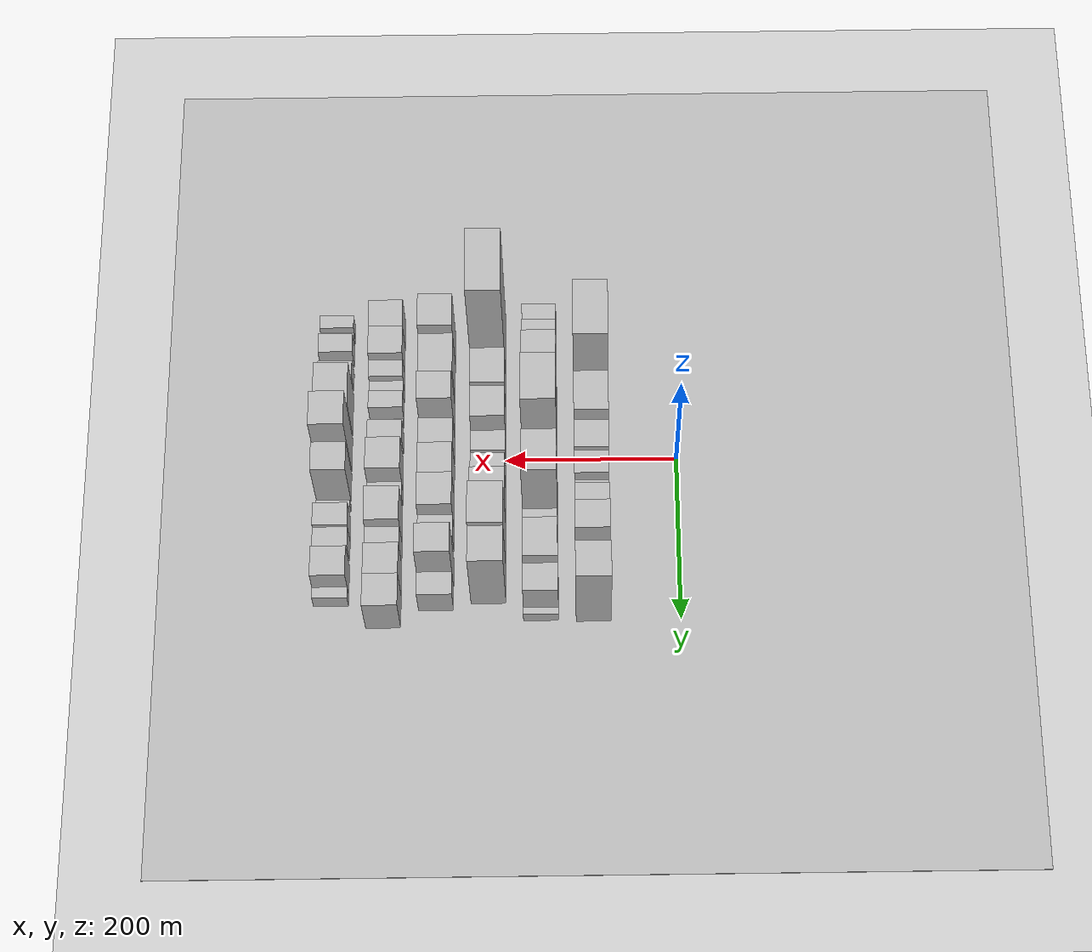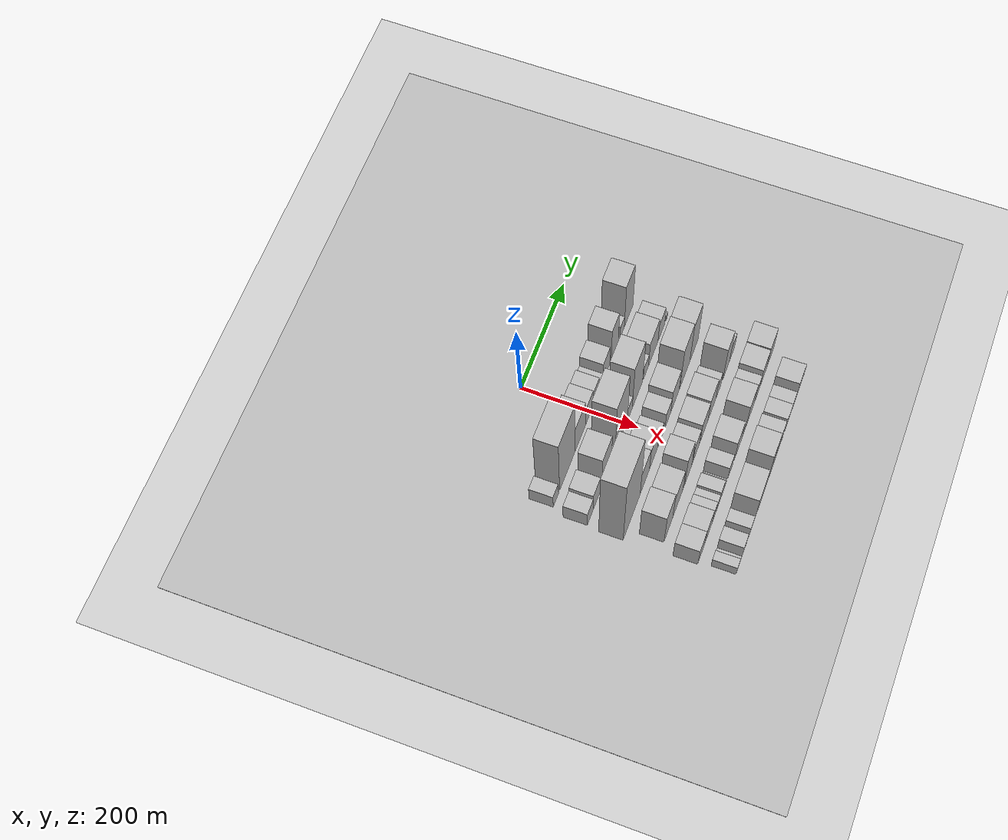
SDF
<sdf version="1.6">
 <world name="default">
  <include><name>ground_plane_1</name><uri>model://HANNAS_ground_plane</uri></include>
  <include>
   <name>ground_plane_2</name>
   <uri>model://HANNAS_ground_plane</uri>
   <pose>100 0 0  0 0 0</pose>
  </include>
  <model name="building_22">
   <static>1</static>
   <pose>100.0000 -160.2569 0 0.000000 0.000000 0.000000</pose>
   <link name="link">
    <pose>0 0 21.00 0 0 0</pose>
    <collision name="collision"><geometry><box><size>40.0000 23.4650 42.0000</size></box></geometry></collision>
    <visual name="visual">
     <cast_shadows>0</cast_shadows>
     <geometry><box><size>40.0000 23.4650 42.0000</size></box></geometry>
     <material>
      <script>
       <uri>model://HANNAS_wall/materials/scripts</uri>
       <uri>model://HANNAS_wall/materials/textures</uri>
       <name>vrc/HANNAS_wall</name>
      </script>
     </material>
    </visual>
   </link>
  </model>
  <model name="building_23">
   <static>1</static>
   <pose>100.0000 -108.8378 0 0.000000 0.000000 0.000000</pose>
   <link name="link">
    <pose>0 0 90.00 0 0 0</pose>
    <collision name="collision"><geometry><box><size>40.0000 69.3731 180.0000</size></box></geometry></collision>
    <visual name="visual">
     <cast_shadows>0</cast_shadows>
     <geometry><box><size>40.0000 69.3731 180.0000</size></box></geometry>
     <material>
      <script>
       <uri>model://HANNAS_wall/materials/scripts</uri>
       <uri>model://HANNAS_wall/materials/textures</uri>
       <name>vrc/HANNAS_wall</name>
      </script>
     </material>
    </visual>
   </link>
  </model>
  <model name="building_24">
   <static>1</static>
   <pose>100.0000 -49.2360 0 0.000000 0.000000 0.000000</pose>
   <link name="link">
    <pose>0 0 43.50 0 0 0</pose>
    <collision name="collision"><geometry><box><size>40.0000 49.8305 87.0000</size></box></geometry></collision>
    <visual name="visual">
     <cast_shadows>0</cast_shadows>
     <geometry><box><size>40.0000 49.8305 87.0000</size></box></geometry>
     <material>
      <script>
       <uri>model://HANNAS_wall/materials/scripts</uri>
       <uri>model://HANNAS_wall/materials/textures</uri>
       <name>vrc/HANNAS_wall</name>
      </script>
     </material>
    </visual>
   </link>
  </model>
  <model name="building_25">
   <static>1</static>
   <pose>100.0000 -7.0572 0 0.000000 0.000000 0.000000</pose>
   <link name="link">
    <pose>0 0 30.00 0 0 0</pose>
    <collision name="collision"><geometry><box><size>40.0000 34.5271 60.0000</size></box></geometry></collision>
    <visual name="visual">
     <cast_shadows>0</cast_shadows>
     <geometry><box><size>40.0000 34.5271 60.0000</size></box></geometry>
     <material>
      <script>
       <uri>model://HANNAS_wall/materials/scripts</uri>
       <uri>model://HANNAS_wall/materials/textures</uri>
       <name>vrc/HANNAS_wall</name>
      </script>
     </material>
    </visual>
   </link>
  </model>
  <model name="building_26">
   <static>1</static>
   <pose>100.0000 24.4348 0 0.000000 0.000000 0.000000</pose>
   <link name="link">
    <pose>0 0 25.50 0 0 0</pose>
    <collision name="collision"><geometry><box><size>40.0000 28.4571 51.0000</size></box></geometry></collision>
    <visual name="visual">
     <cast_shadows>0</cast_shadows>
     <geometry><box><size>40.0000 28.4571 51.0000</size></box></geometry>
     <material>
      <script>
       <uri>model://HANNAS_wall/materials/scripts</uri>
       <uri>model://HANNAS_wall/materials/textures</uri>
       <name>vrc/HANNAS_wall</name>
      </script>
     </material>
    </visual>
   </link>
  </model>
  <model name="building_27">
   <static>1</static>
   <pose>100.0000 47.5312 0 0.000000 0.000000 0.000000</pose>
   <link name="link">
    <pose>0 0 15.00 0 0 0</pose>
    <collision name="collision"><geometry><box><size>40.0000 17.7357 30.0000</size></box></geometry></collision>
    <visual name="visual">
     <cast_shadows>0</cast_shadows>
     <geometry><box><size>40.0000 17.7357 30.0000</size></box></geometry>
     <material>
      <script>
       <uri>model://HANNAS_wall/materials/scripts</uri>
       <uri>model://HANNAS_wall/materials/textures</uri>
       <name>vrc/HANNAS_wall</name>
      </script>
     </material>
    </visual>
   </link>
  </model>
  <model name="building_28">
   <static>1</static>
   <pose>100.0000 72.5629 0 0.000000 0.000000 0.000000</pose>
   <link name="link">
    <pose>0 0 31.50 0 0 0</pose>
    <collision name="collision"><geometry><box><size>40.0000 32.3277 63.0000</size></box></geometry></collision>
    <visual name="visual">
     <cast_shadows>0</cast_shadows>
     <geometry><box><size>40.0000 32.3277 63.0000</size></box></geometry>
     <material>
      <script>
       <uri>model://HANNAS_wall/materials/scripts</uri>
       <uri>model://HANNAS_wall/materials/textures</uri>
       <name>vrc/HANNAS_wall</name>
      </script>
     </material>
    </visual>
   </link>
  </model>
  <model name="building_29">
   <static>1</static>
   <pose>100.0000 112.8015 0 0.000000 0.000000 0.000000</pose>
   <link name="link">
    <pose>0 0 52.50 0 0 0</pose>
    <collision name="collision"><geometry><box><size>40.0000 34.1494 105.0000</size></box></geometry></collision>
    <visual name="visual">
     <cast_shadows>0</cast_shadows>
     <geometry><box><size>40.0000 34.1494 105.0000</size></box></geometry>
     <material>
      <script>
       <uri>model://HANNAS_wall/materials/scripts</uri>
       <uri>model://HANNAS_wall/materials/textures</uri>
       <name>vrc/HANNAS_wall</name>
      </script>
     </material>
    </visual>
   </link>
  </model>
  <model name="building_30">
   <static>1</static>
   <pose>100.0000 149.2179 0 0.000000 0.000000 0.000000</pose>
   <link name="link">
    <pose>0 0 19.50 0 0 0</pose>
    <collision name="collision"><geometry><box><size>40.0000 20.6833 39.0000</size></box></geometry></collision>
    <visual name="visual">
     <cast_shadows>0</cast_shadows>
     <geometry><box><size>40.0000 20.6833 39.0000</size></box></geometry>
     <material>
      <script>
       <uri>model://HANNAS_wall/materials/scripts</uri>
       <uri>model://HANNAS_wall/materials/textures</uri>
       <name>vrc/HANNAS_wall</name>
      </script>
     </material>
    </visual>
   </link>
  </model>
  <model name="building_31">
   <static>1</static>
   <pose>100.0000 180.7832 0 0.000000 0.000000 0.000000</pose>
   <link name="link">
    <pose>0 0 69.00 0 0 0</pose>
    <collision name="collision"><geometry><box><size>40.0000 42.4473 138.0000</size></box></geometry></collision>
    <visual name="visual">
     <cast_shadows>0</cast_shadows>
     <geometry><box><size>40.0000 42.4473 138.0000</size></box></geometry>
     <material>
      <script>
       <uri>model://HANNAS_wall/materials/scripts</uri>
       <uri>model://HANNAS_wall/materials/textures</uri>
       <name>vrc/HANNAS_wall</name>
      </script>
     </material>
    </visual>
   </link>
  </model>
  <model name="building_79">
   <static>1</static>
   <pose>160.0000 -168.6205 0 0.000000 0.000000 0.000000</pose>
   <link name="link">
    <pose>0 0 24.00 0 0 0</pose>
    <collision name="collision"><geometry><box><size>40.0000 26.7682 48.0000</size></box></geometry></collision>
    <visual name="visual">
     <cast_shadows>0</cast_shadows>
     <geometry><box><size>40.0000 26.7682 48.0000</size></box></geometry>
     <material>
      <script>
       <uri>model://HANNAS_wall/materials/scripts</uri>
       <uri>model://HANNAS_wall/materials/textures</uri>
       <name>vrc/HANNAS_wall</name>
      </script>
     </material>
    </visual>
   </link>
  </model>
  <model name="building_80">
   <static>1</static>
   <pose>160.0000 -138.8640 0 0.000000 0.000000 0.000000</pose>
   <link name="link">
    <pose>0 0 30.00 0 0 0</pose>
    <collision name="collision"><geometry><box><size>40.0000 32.7448 60.0000</size></box></geometry></collision>
    <visual name="visual">
     <cast_shadows>0</cast_shadows>
     <geometry><box><size>40.0000 32.7448 60.0000</size></box></geometry>
     <material>
      <script>
       <uri>model://HANNAS_wall/materials/scripts</uri>
       <uri>model://HANNAS_wall/materials/textures</uri>
       <name>vrc/HANNAS_wall</name>
      </script>
     </material>
    </visual>
   </link>
  </model>
  <model name="building_81">
   <static>1</static>
   <pose>160.0000 -93.9280 0 0.000000 0.000000 0.000000</pose>
   <link name="link">
    <pose>0 0 55.50 0 0 0</pose>
    <collision name="collision"><geometry><box><size>40.0000 43.1273 111.0000</size></box></geometry></collision>
    <visual name="visual">
     <cast_shadows>0</cast_shadows>
     <geometry><box><size>40.0000 43.1273 111.0000</size></box></geometry>
     <material>
      <script>
       <uri>model://HANNAS_wall/materials/scripts</uri>
       <uri>model://HANNAS_wall/materials/textures</uri>
       <name>vrc/HANNAS_wall</name>
      </script>
     </material>
    </visual>
   </link>
  </model>
  <model name="building_82">
   <static>1</static>
   <pose>160.0000 -60.4800 0 0.000000 0.000000 0.000000</pose>
   <link name="link">
    <pose>0 0 13.50 0 0 0</pose>
    <collision name="collision"><geometry><box><size>40.0000 11.7686 27.0000</size></box></geometry></collision>
    <visual name="visual">
     <cast_shadows>0</cast_shadows>
     <geometry><box><size>40.0000 11.7686 27.0000</size></box></geometry>
     <material>
      <script>
       <uri>model://HANNAS_wall/materials/scripts</uri>
       <uri>model://HANNAS_wall/materials/textures</uri>
       <name>vrc/HANNAS_wall</name>
      </script>
     </material>
    </visual>
   </link>
  </model>
  <model name="building_83">
   <static>1</static>
   <pose>160.0000 -25.7675 0 0.000000 0.000000 0.000000</pose>
   <link name="link">
    <pose>0 0 87.00 0 0 0</pose>
    <collision name="collision"><geometry><box><size>40.0000 57.6565 174.0000</size></box></geometry></collision>
    <visual name="visual">
     <cast_shadows>0</cast_shadows>
     <geometry><box><size>40.0000 57.6565 174.0000</size></box></geometry>
     <material>
      <script>
       <uri>model://HANNAS_wall/materials/scripts</uri>
       <uri>model://HANNAS_wall/materials/textures</uri>
       <name>vrc/HANNAS_wall</name>
      </script>
     </material>
    </visual>
   </link>
  </model>
  <model name="building_84">
   <static>1</static>
   <pose>160.0000 15.1243 0 0.000000 0.000000 0.000000</pose>
   <link name="link">
    <pose>0 0 24.00 0 0 0</pose>
    <collision name="collision"><geometry><box><size>40.0000 24.1272 48.0000</size></box></geometry></collision>
    <visual name="visual">
     <cast_shadows>0</cast_shadows>
     <geometry><box><size>40.0000 24.1272 48.0000</size></box></geometry>
     <material>
      <script>
       <uri>model://HANNAS_wall/materials/scripts</uri>
       <uri>model://HANNAS_wall/materials/textures</uri>
       <name>vrc/HANNAS_wall</name>
      </script>
     </material>
    </visual>
   </link>
  </model>
  <model name="building_85">
   <static>1</static>
   <pose>160.0000 52.2467 0 0.000000 0.000000 0.000000</pose>
   <link name="link">
    <pose>0 0 73.50 0 0 0</pose>
    <collision name="collision"><geometry><box><size>40.0000 50.1175 147.0000</size></box></geometry></collision>
    <visual name="visual">
     <cast_shadows>0</cast_shadows>
     <geometry><box><size>40.0000 50.1175 147.0000</size></box></geometry>
     <material>
      <script>
       <uri>model://HANNAS_wall/materials/scripts</uri>
       <uri>model://HANNAS_wall/materials/textures</uri>
       <name>vrc/HANNAS_wall</name>
      </script>
     </material>
    </visual>
   </link>
  </model>
  <model name="building_86">
   <static>1</static>
   <pose>160.0000 93.2717 0 0.000000 0.000000 0.000000</pose>
   <link name="link">
    <pose>0 0 22.50 0 0 0</pose>
    <collision name="collision"><geometry><box><size>40.0000 25.9326 45.0000</size></box></geometry></collision>
    <visual name="visual">
     <cast_shadows>0</cast_shadows>
     <geometry><box><size>40.0000 25.9326 45.0000</size></box></geometry>
     <material>
      <script>
       <uri>model://HANNAS_wall/materials/scripts</uri>
       <uri>model://HANNAS_wall/materials/textures</uri>
       <name>vrc/HANNAS_wall</name>
      </script>
     </material>
    </visual>
   </link>
  </model>
  <model name="building_87">
   <static>1</static>
   <pose>160.0000 129.9010 0 0.000000 0.000000 0.000000</pose>
   <link name="link">
    <pose>0 0 40.50 0 0 0</pose>
    <collision name="collision"><geometry><box><size>40.0000 47.3261 81.0000</size></box></geometry></collision>
    <visual name="visual">
     <cast_shadows>0</cast_shadows>
     <geometry><box><size>40.0000 47.3261 81.0000</size></box></geometry>
     <material>
      <script>
       <uri>model://HANNAS_wall/materials/scripts</uri>
       <uri>model://HANNAS_wall/materials/textures</uri>
       <name>vrc/HANNAS_wall</name>
      </script>
     </material>
    </visual>
   </link>
  </model>
  <model name="building_88">
   <static>1</static>
   <pose>160.0000 170.2879 0 0.000000 0.000000 0.000000</pose>
   <link name="link">
    <pose>0 0 30.00 0 0 0</pose>
    <collision name="collision"><geometry><box><size>40.0000 33.4475 60.0000</size></box></geometry></collision>
    <visual name="visual">
     <cast_shadows>0</cast_shadows>
     <geometry><box><size>40.0000 33.4475 60.0000</size></box></geometry>
     <material>
      <script>
       <uri>model://HANNAS_wall/materials/scripts</uri>
       <uri>model://HANNAS_wall/materials/textures</uri>
       <name>vrc/HANNAS_wall</name>
      </script>
     </material>
    </visual>
   </link>
  </model>
  <model name="building_89">
   <static>1</static>
   <pose>160.0000 196.2375 0 0.000000 0.000000 0.000000</pose>
   <link name="link">
    <pose>0 0 10.50 0 0 0</pose>
    <collision name="collision"><geometry><box><size>40.0000 8.4518 21.0000</size></box></geometry></collision>
    <visual name="visual">
     <cast_shadows>0</cast_shadows>
     <geometry><box><size>40.0000 8.4518 21.0000</size></box></geometry>
     <material>
      <script>
       <uri>model://HANNAS_wall/materials/scripts</uri>
       <uri>model://HANNAS_wall/materials/textures</uri>
       <name>vrc/HANNAS_wall</name>
      </script>
     </material>
    </visual>
   </link>
  </model>
  <model name="building_131">
   <static>1</static>
   <pose>220.0000 -146.2867 0 0.000000 0.000000 0.000000</pose>
   <link name="link">
    <pose>0 0 112.50 0 0 0</pose>
    <collision name="collision"><geometry><box><size>40.0000 79.0417 225.0000</size></box></geometry></collision>
    <visual name="visual">
     <cast_shadows>0</cast_shadows>
     <geometry><box><size>40.0000 79.0417 225.0000</size></box></geometry>
     <material>
      <script>
       <uri>model://HANNAS_wall/materials/scripts</uri>
       <uri>model://HANNAS_wall/materials/textures</uri>
       <name>vrc/HANNAS_wall</name>
      </script>
     </material>
    </visual>
   </link>
  </model>
  <model name="building_132">
   <static>1</static>
   <pose>220.0000 -84.6264 0 0.000000 0.000000 0.000000</pose>
   <link name="link">
    <pose>0 0 42.00 0 0 0</pose>
    <collision name="collision"><geometry><box><size>40.0000 44.2787 84.0000</size></box></geometry></collision>
    <visual name="visual">
     <cast_shadows>0</cast_shadows>
     <geometry><box><size>40.0000 44.2787 84.0000</size></box></geometry>
     <material>
      <script>
       <uri>model://HANNAS_wall/materials/scripts</uri>
       <uri>model://HANNAS_wall/materials/textures</uri>
       <name>vrc/HANNAS_wall</name>
      </script>
     </material>
    </visual>
   </link>
  </model>
  <model name="building_133">
   <static>1</static>
   <pose>220.0000 -43.1276 0 0.000000 0.000000 0.000000</pose>
   <link name="link">
    <pose>0 0 37.50 0 0 0</pose>
    <collision name="collision"><geometry><box><size>40.0000 38.7190 75.0000</size></box></geometry></collision>
    <visual name="visual">
     <cast_shadows>0</cast_shadows>
     <geometry><box><size>40.0000 38.7190 75.0000</size></box></geometry>
     <material>
      <script>
       <uri>model://HANNAS_wall/materials/scripts</uri>
       <uri>model://HANNAS_wall/materials/textures</uri>
       <name>vrc/HANNAS_wall</name>
      </script>
     </material>
    </visual>
   </link>
  </model>
  <model name="building_134">
   <static>1</static>
   <pose>220.0000 -8.1931 0 0.000000 0.000000 0.000000</pose>
   <link name="link">
    <pose>0 0 21.00 0 0 0</pose>
    <collision name="collision"><geometry><box><size>40.0000 25.1499 42.0000</size></box></geometry></collision>
    <visual name="visual">
     <cast_shadows>0</cast_shadows>
     <geometry><box><size>40.0000 25.1499 42.0000</size></box></geometry>
     <material>
      <script>
       <uri>model://HANNAS_wall/materials/scripts</uri>
       <uri>model://HANNAS_wall/materials/textures</uri>
       <name>vrc/HANNAS_wall</name>
      </script>
     </material>
    </visual>
   </link>
  </model>
  <model name="building_135">
   <static>1</static>
   <pose>220.0000 27.5547 0 0.000000 0.000000 0.000000</pose>
   <link name="link">
    <pose>0 0 27.00 0 0 0</pose>
    <collision name="collision"><geometry><box><size>40.0000 28.3457 54.0000</size></box></geometry></collision>
    <visual name="visual">
     <cast_shadows>0</cast_shadows>
     <geometry><box><size>40.0000 28.3457 54.0000</size></box></geometry>
     <material>
      <script>
       <uri>model://HANNAS_wall/materials/scripts</uri>
       <uri>model://HANNAS_wall/materials/textures</uri>
       <name>vrc/HANNAS_wall</name>
      </script>
     </material>
    </visual>
   </link>
  </model>
  <model name="building_136">
   <static>1</static>
   <pose>220.0000 62.4410 0 0.000000 0.000000 0.000000</pose>
   <link name="link">
    <pose>0 0 39.00 0 0 0</pose>
    <collision name="collision"><geometry><box><size>40.0000 41.4268 78.0000</size></box></geometry></collision>
    <visual name="visual">
     <cast_shadows>0</cast_shadows>
     <geometry><box><size>40.0000 41.4268 78.0000</size></box></geometry>
     <material>
      <script>
       <uri>model://HANNAS_wall/materials/scripts</uri>
       <uri>model://HANNAS_wall/materials/textures</uri>
       <name>vrc/HANNAS_wall</name>
      </script>
     </material>
    </visual>
   </link>
  </model>
  <model name="building_137">
   <static>1</static>
   <pose>220.0000 111.3456 0 0.000000 0.000000 0.000000</pose>
   <link name="link">
    <pose>0 0 69.00 0 0 0</pose>
    <collision name="collision"><geometry><box><size>40.0000 50.3825 138.0000</size></box></geometry></collision>
    <visual name="visual">
     <cast_shadows>0</cast_shadows>
     <geometry><box><size>40.0000 50.3825 138.0000</size></box></geometry>
     <material>
      <script>
       <uri>model://HANNAS_wall/materials/scripts</uri>
       <uri>model://HANNAS_wall/materials/textures</uri>
       <name>vrc/HANNAS_wall</name>
      </script>
     </material>
    </visual>
   </link>
  </model>
  <model name="building_138">
   <static>1</static>
   <pose>220.0000 157.7295 0 0.000000 0.000000 0.000000</pose>
   <link name="link">
    <pose>0 0 64.50 0 0 0</pose>
    <collision name="collision"><geometry><box><size>40.0000 42.3854 129.0000</size></box></geometry></collision>
    <visual name="visual">
     <cast_shadows>0</cast_shadows>
     <geometry><box><size>40.0000 42.3854 129.0000</size></box></geometry>
     <material>
      <script>
       <uri>model://HANNAS_wall/materials/scripts</uri>
       <uri>model://HANNAS_wall/materials/textures</uri>
       <name>vrc/HANNAS_wall</name>
      </script>
     </material>
    </visual>
   </link>
  </model>
  <model name="building_185">
   <static>1</static>
   <pose>280.0000 -146.7727 0 0.000000 0.000000 0.000000</pose>
   <link name="link">
    <pose>0 0 52.50 0 0 0</pose>
    <collision name="collision"><geometry><box><size>40.0000 41.1512 105.0000</size></box></geometry></collision>
    <visual name="visual">
     <cast_shadows>0</cast_shadows>
     <geometry><box><size>40.0000 41.1512 105.0000</size></box></geometry>
     <material>
      <script>
       <uri>model://HANNAS_wall/materials/scripts</uri>
       <uri>model://HANNAS_wall/materials/textures</uri>
       <name>vrc/HANNAS_wall</name>
      </script>
     </material>
    </visual>
   </link>
  </model>
  <model name="building_186">
   <static>1</static>
   <pose>280.0000 -101.7694 0 0.000000 0.000000 0.000000</pose>
   <link name="link">
    <pose>0 0 42.00 0 0 0</pose>
    <collision name="collision"><geometry><box><size>40.0000 48.8555 84.0000</size></box></geometry></collision>
    <visual name="visual">
     <cast_shadows>0</cast_shadows>
     <geometry><box><size>40.0000 48.8555 84.0000</size></box></geometry>
     <material>
      <script>
       <uri>model://HANNAS_wall/materials/scripts</uri>
       <uri>model://HANNAS_wall/materials/textures</uri>
       <name>vrc/HANNAS_wall</name>
      </script>
     </material>
    </visual>
   </link>
  </model>
  <model name="building_187">
   <static>1</static>
   <pose>280.0000 -72.9689 0 0.000000 0.000000 0.000000</pose>
   <link name="link">
    <pose>0 0 9.00 0 0 0</pose>
    <collision name="collision"><geometry><box><size>40.0000 8.7455 18.0000</size></box></geometry></collision>
    <visual name="visual">
     <cast_shadows>0</cast_shadows>
     <geometry><box><size>40.0000 8.7455 18.0000</size></box></geometry>
     <material>
      <script>
       <uri>model://HANNAS_wall/materials/scripts</uri>
       <uri>model://HANNAS_wall/materials/textures</uri>
       <name>vrc/HANNAS_wall</name>
      </script>
     </material>
    </visual>
   </link>
  </model>
  <model name="building_188">
   <static>1</static>
   <pose>280.0000 -51.3539 0 0.000000 0.000000 0.000000</pose>
   <link name="link">
    <pose>0 0 51.00 0 0 0</pose>
    <collision name="collision"><geometry><box><size>40.0000 34.4844 102.0000</size></box></geometry></collision>
    <visual name="visual">
     <cast_shadows>0</cast_shadows>
     <geometry><box><size>40.0000 34.4844 102.0000</size></box></geometry>
     <material>
      <script>
       <uri>model://HANNAS_wall/materials/scripts</uri>
       <uri>model://HANNAS_wall/materials/textures</uri>
       <name>vrc/HANNAS_wall</name>
      </script>
     </material>
    </visual>
   </link>
  </model>
  <model name="building_189">
   <static>1</static>
   <pose>280.0000 -30.8650 0 0.000000 0.000000 0.000000</pose>
   <link name="link">
    <pose>0 0 7.50 0 0 0</pose>
    <collision name="collision"><geometry><box><size>40.0000 6.4933 15.0000</size></box></geometry></collision>
    <visual name="visual">
     <cast_shadows>0</cast_shadows>
     <geometry><box><size>40.0000 6.4933 15.0000</size></box></geometry>
     <material>
      <script>
       <uri>model://HANNAS_wall/materials/scripts</uri>
       <uri>model://HANNAS_wall/materials/textures</uri>
       <name>vrc/HANNAS_wall</name>
      </script>
     </material>
    </visual>
   </link>
  </model>
  <model name="building_190">
   <static>1</static>
   <pose>280.0000 -11.6006 0 0.000000 0.000000 0.000000</pose>
   <link name="link">
    <pose>0 0 31.50 0 0 0</pose>
    <collision name="collision"><geometry><box><size>40.0000 32.0356 63.0000</size></box></geometry></collision>
    <visual name="visual">
     <cast_shadows>0</cast_shadows>
     <geometry><box><size>40.0000 32.0356 63.0000</size></box></geometry>
     <material>
      <script>
       <uri>model://HANNAS_wall/materials/scripts</uri>
       <uri>model://HANNAS_wall/materials/textures</uri>
       <name>vrc/HANNAS_wall</name>
      </script>
     </material>
    </visual>
   </link>
  </model>
  <model name="building_191">
   <static>1</static>
   <pose>280.0000 27.5379 0 0.000000 0.000000 0.000000</pose>
   <link name="link">
    <pose>0 0 36.00 0 0 0</pose>
    <collision name="collision"><geometry><box><size>40.0000 40.2413 72.0000</size></box></geometry></collision>
    <visual name="visual">
     <cast_shadows>0</cast_shadows>
     <geometry><box><size>40.0000 40.2413 72.0000</size></box></geometry>
     <material>
      <script>
       <uri>model://HANNAS_wall/materials/scripts</uri>
       <uri>model://HANNAS_wall/materials/textures</uri>
       <name>vrc/HANNAS_wall</name>
      </script>
     </material>
    </visual>
   </link>
  </model>
  <model name="building_192">
   <static>1</static>
   <pose>280.0000 67.6784 0 0.000000 0.000000 0.000000</pose>
   <link name="link">
    <pose>0 0 39.00 0 0 0</pose>
    <collision name="collision"><geometry><box><size>40.0000 40.0399 78.0000</size></box></geometry></collision>
    <visual name="visual">
     <cast_shadows>0</cast_shadows>
     <geometry><box><size>40.0000 40.0399 78.0000</size></box></geometry>
     <material>
      <script>
       <uri>model://HANNAS_wall/materials/scripts</uri>
       <uri>model://HANNAS_wall/materials/textures</uri>
       <name>vrc/HANNAS_wall</name>
      </script>
     </material>
    </visual>
   </link>
  </model>
  <model name="building_193">
   <static>1</static>
   <pose>280.0000 101.1309 0 0.000000 0.000000 0.000000</pose>
   <link name="link">
    <pose>0 0 24.00 0 0 0</pose>
    <collision name="collision"><geometry><box><size>40.0000 26.8652 48.0000</size></box></geometry></collision>
    <visual name="visual">
     <cast_shadows>0</cast_shadows>
     <geometry><box><size>40.0000 26.8652 48.0000</size></box></geometry>
     <material>
      <script>
       <uri>model://HANNAS_wall/materials/scripts</uri>
       <uri>model://HANNAS_wall/materials/textures</uri>
       <name>vrc/HANNAS_wall</name>
      </script>
     </material>
    </visual>
   </link>
  </model>
  <model name="building_194">
   <static>1</static>
   <pose>280.0000 142.0109 0 0.000000 0.000000 0.000000</pose>
   <link name="link">
    <pose>0 0 55.50 0 0 0</pose>
    <collision name="collision"><geometry><box><size>40.0000 34.8948 111.0000</size></box></geometry></collision>
    <visual name="visual">
     <cast_shadows>0</cast_shadows>
     <geometry><box><size>40.0000 34.8948 111.0000</size></box></geometry>
     <material>
      <script>
       <uri>model://HANNAS_wall/materials/scripts</uri>
       <uri>model://HANNAS_wall/materials/textures</uri>
       <name>vrc/HANNAS_wall</name>
      </script>
     </material>
    </visual>
   </link>
  </model>
  <model name="building_195">
   <static>1</static>
   <pose>280.0000 173.0844 0 0.000000 0.000000 0.000000</pose>
   <link name="link">
    <pose>0 0 25.50 0 0 0</pose>
    <collision name="collision"><geometry><box><size>40.0000 27.2522 51.0000</size></box></geometry></collision>
    <visual name="visual">
     <cast_shadows>0</cast_shadows>
     <geometry><box><size>40.0000 27.2522 51.0000</size></box></geometry>
     <material>
      <script>
       <uri>model://HANNAS_wall/materials/scripts</uri>
       <uri>model://HANNAS_wall/materials/textures</uri>
       <name>vrc/HANNAS_wall</name>
      </script>
     </material>
    </visual>
   </link>
  </model>
  <model name="building_238">
   <static>1</static>
   <pose>340.0000 -166.2018 0 0.000000 0.000000 0.000000</pose>
   <link name="link">
    <pose>0 0 30.00 0 0 0</pose>
    <collision name="collision"><geometry><box><size>40.0000 34.0031 60.0000</size></box></geometry></collision>
    <visual name="visual">
     <cast_shadows>0</cast_shadows>
     <geometry><box><size>40.0000 34.0031 60.0000</size></box></geometry>
     <material>
      <script>
       <uri>model://HANNAS_wall/materials/scripts</uri>
       <uri>model://HANNAS_wall/materials/textures</uri>
       <name>vrc/HANNAS_wall</name>
      </script>
     </material>
    </visual>
   </link>
  </model>
  <model name="building_239">
   <static>1</static>
   <pose>340.0000 -131.4010 0 0.000000 0.000000 0.000000</pose>
   <link name="link">
    <pose>0 0 30.00 0 0 0</pose>
    <collision name="collision"><geometry><box><size>40.0000 35.5985 60.0000</size></box></geometry></collision>
    <visual name="visual">
     <cast_shadows>0</cast_shadows>
     <geometry><box><size>40.0000 35.5985 60.0000</size></box></geometry>
     <material>
      <script>
       <uri>model://HANNAS_wall/materials/scripts</uri>
       <uri>model://HANNAS_wall/materials/textures</uri>
       <name>vrc/HANNAS_wall</name>
      </script>
     </material>
    </visual>
   </link>
  </model>
  <model name="building_240">
   <static>1</static>
   <pose>340.0000 -102.7576 0 0.000000 0.000000 0.000000</pose>
   <link name="link">
    <pose>0 0 21.00 0 0 0</pose>
    <collision name="collision"><geometry><box><size>40.0000 21.6885 42.0000</size></box></geometry></collision>
    <visual name="visual">
     <cast_shadows>0</cast_shadows>
     <geometry><box><size>40.0000 21.6885 42.0000</size></box></geometry>
     <material>
      <script>
       <uri>model://HANNAS_wall/materials/scripts</uri>
       <uri>model://HANNAS_wall/materials/textures</uri>
       <name>vrc/HANNAS_wall</name>
      </script>
     </material>
    </visual>
   </link>
  </model>
  <model name="building_241">
   <static>1</static>
   <pose>340.0000 -83.3903 0 0.000000 0.000000 0.000000</pose>
   <link name="link">
    <pose>0 0 15.00 0 0 0</pose>
    <collision name="collision"><geometry><box><size>40.0000 17.0461 30.0000</size></box></geometry></collision>
    <visual name="visual">
     <cast_shadows>0</cast_shadows>
     <geometry><box><size>40.0000 17.0461 30.0000</size></box></geometry>
     <material>
      <script>
       <uri>model://HANNAS_wall/materials/scripts</uri>
       <uri>model://HANNAS_wall/materials/textures</uri>
       <name>vrc/HANNAS_wall</name>
      </script>
     </material>
    </visual>
   </link>
  </model>
  <model name="building_242">
   <static>1</static>
   <pose>340.0000 -64.0837 0 0.000000 0.000000 0.000000</pose>
   <link name="link">
    <pose>0 0 19.50 0 0 0</pose>
    <collision name="collision"><geometry><box><size>40.0000 21.5671 39.0000</size></box></geometry></collision>
    <visual name="visual">
     <cast_shadows>0</cast_shadows>
     <geometry><box><size>40.0000 21.5671 39.0000</size></box></geometry>
     <material>
      <script>
       <uri>model://HANNAS_wall/materials/scripts</uri>
       <uri>model://HANNAS_wall/materials/textures</uri>
       <name>vrc/HANNAS_wall</name>
      </script>
     </material>
    </visual>
   </link>
  </model>
  <model name="building_243">
   <static>1</static>
   <pose>340.0000 -46.0498 0 0.000000 0.000000 0.000000</pose>
   <link name="link">
    <pose>0 0 7.50 0 0 0</pose>
    <collision name="collision"><geometry><box><size>40.0000 6.5007 15.0000</size></box></geometry></collision>
    <visual name="visual">
     <cast_shadows>0</cast_shadows>
     <geometry><box><size>40.0000 6.5007 15.0000</size></box></geometry>
     <material>
      <script>
       <uri>model://HANNAS_wall/materials/scripts</uri>
       <uri>model://HANNAS_wall/materials/textures</uri>
       <name>vrc/HANNAS_wall</name>
      </script>
     </material>
    </visual>
   </link>
  </model>
  <model name="building_244">
   <static>1</static>
   <pose>340.0000 -22.5442 0 0.000000 0.000000 0.000000</pose>
   <link name="link">
    <pose>0 0 22.50 0 0 0</pose>
    <collision name="collision"><geometry><box><size>40.0000 24.5105 45.0000</size></box></geometry></collision>
    <visual name="visual">
     <cast_shadows>0</cast_shadows>
     <geometry><box><size>40.0000 24.5105 45.0000</size></box></geometry>
     <material>
      <script>
       <uri>model://HANNAS_wall/materials/scripts</uri>
       <uri>model://HANNAS_wall/materials/textures</uri>
       <name>vrc/HANNAS_wall</name>
      </script>
     </material>
    </visual>
   </link>
  </model>
  <model name="building_245">
   <static>1</static>
   <pose>340.0000 18.3250 0 0.000000 0.000000 0.000000</pose>
   <link name="link">
    <pose>0 0 34.50 0 0 0</pose>
    <collision name="collision"><geometry><box><size>40.0000 39.2279 69.0000</size></box></geometry></collision>
    <visual name="visual">
     <cast_shadows>0</cast_shadows>
     <geometry><box><size>40.0000 39.2279 69.0000</size></box></geometry>
     <material>
      <script>
       <uri>model://HANNAS_wall/materials/scripts</uri>
       <uri>model://HANNAS_wall/materials/textures</uri>
       <name>vrc/HANNAS_wall</name>
      </script>
     </material>
    </visual>
   </link>
  </model>
  <model name="building_246">
   <static>1</static>
   <pose>340.0000 46.7741 0 0.000000 0.000000 0.000000</pose>
   <link name="link">
    <pose>0 0 15.00 0 0 0</pose>
    <collision name="collision"><geometry><box><size>40.0000 17.6702 30.0000</size></box></geometry></collision>
    <visual name="visual">
     <cast_shadows>0</cast_shadows>
     <geometry><box><size>40.0000 17.6702 30.0000</size></box></geometry>
     <material>
      <script>
       <uri>model://HANNAS_wall/materials/scripts</uri>
       <uri>model://HANNAS_wall/materials/textures</uri>
       <name>vrc/HANNAS_wall</name>
      </script>
     </material>
    </visual>
   </link>
  </model>
  <model name="building_247">
   <static>1</static>
   <pose>340.0000 82.2888 0 0.000000 0.000000 0.000000</pose>
   <link name="link">
    <pose>0 0 36.00 0 0 0</pose>
    <collision name="collision"><geometry><box><size>40.0000 41.3594 72.0000</size></box></geometry></collision>
    <visual name="visual">
     <cast_shadows>0</cast_shadows>
     <geometry><box><size>40.0000 41.3594 72.0000</size></box></geometry>
     <material>
      <script>
       <uri>model://HANNAS_wall/materials/scripts</uri>
       <uri>model://HANNAS_wall/materials/textures</uri>
       <name>vrc/HANNAS_wall</name>
      </script>
     </material>
    </visual>
   </link>
  </model>
  <model name="building_248">
   <static>1</static>
   <pose>340.0000 116.5048 0 0.000000 0.000000 0.000000</pose>
   <link name="link">
    <pose>0 0 25.50 0 0 0</pose>
    <collision name="collision"><geometry><box><size>40.0000 27.0726 51.0000</size></box></geometry></collision>
    <visual name="visual">
     <cast_shadows>0</cast_shadows>
     <geometry><box><size>40.0000 27.0726 51.0000</size></box></geometry>
     <material>
      <script>
       <uri>model://HANNAS_wall/materials/scripts</uri>
       <uri>model://HANNAS_wall/materials/textures</uri>
       <name>vrc/HANNAS_wall</name>
      </script>
     </material>
    </visual>
   </link>
  </model>
  <model name="building_249">
   <static>1</static>
   <pose>340.0000 149.3393 0 0.000000 0.000000 0.000000</pose>
   <link name="link">
    <pose>0 0 34.50 0 0 0</pose>
    <collision name="collision"><geometry><box><size>40.0000 38.5964 69.0000</size></box></geometry></collision>
    <visual name="visual">
     <cast_shadows>0</cast_shadows>
     <geometry><box><size>40.0000 38.5964 69.0000</size></box></geometry>
     <material>
      <script>
       <uri>model://HANNAS_wall/materials/scripts</uri>
       <uri>model://HANNAS_wall/materials/textures</uri>
       <name>vrc/HANNAS_wall</name>
      </script>
     </material>
    </visual>
   </link>
  </model>
  <model name="building_250">
   <static>1</static>
   <pose>340.0000 188.0062 0 0.000000 0.000000 0.000000</pose>
   <link name="link">
    <pose>0 0 36.00 0 0 0</pose>
    <collision name="collision"><geometry><box><size>40.0000 38.7373 72.0000</size></box></geometry></collision>
    <visual name="visual">
     <cast_shadows>0</cast_shadows>
     <geometry><box><size>40.0000 38.7373 72.0000</size></box></geometry>
     <material>
      <script>
       <uri>model://HANNAS_wall/materials/scripts</uri>
       <uri>model://HANNAS_wall/materials/textures</uri>
       <name>vrc/HANNAS_wall</name>
      </script>
     </material>
    </visual>
   </link>
  </model>
  <model name="building_296">
   <static>1</static>
   <pose>400.0000 -170.4351 0 0.000000 0.000000 0.000000</pose>
   <link name="link">
    <pose>0 0 15.00 0 0 0</pose>
    <collision name="collision"><geometry><box><size>40.0000 16.1138 30.0000</size></box></geometry></collision>
    <visual name="visual">
     <cast_shadows>0</cast_shadows>
     <geometry><box><size>40.0000 16.1138 30.0000</size></box></geometry>
     <material>
      <script>
       <uri>model://HANNAS_wall/materials/scripts</uri>
       <uri>model://HANNAS_wall/materials/textures</uri>
       <name>vrc/HANNAS_wall</name>
      </script>
     </material>
    </visual>
   </link>
  </model>
  <model name="building_297">
   <static>1</static>
   <pose>400.0000 -158.0125 0 0.000000 0.000000 0.000000</pose>
   <link name="link">
    <pose>0 0 9.00 0 0 0</pose>
    <collision name="collision"><geometry><box><size>40.0000 8.7315 18.0000</size></box></geometry></collision>
    <visual name="visual">
     <cast_shadows>0</cast_shadows>
     <geometry><box><size>40.0000 8.7315 18.0000</size></box></geometry>
     <material>
      <script>
       <uri>model://HANNAS_wall/materials/scripts</uri>
       <uri>model://HANNAS_wall/materials/textures</uri>
       <name>vrc/HANNAS_wall</name>
      </script>
     </material>
    </visual>
   </link>
  </model>
  <model name="building_298">
   <static>1</static>
   <pose>400.0000 -136.7332 0 0.000000 0.000000 0.000000</pose>
   <link name="link">
    <pose>0 0 21.00 0 0 0</pose>
    <collision name="collision"><geometry><box><size>40.0000 23.8270 42.0000</size></box></geometry></collision>
    <visual name="visual">
     <cast_shadows>0</cast_shadows>
     <geometry><box><size>40.0000 23.8270 42.0000</size></box></geometry>
     <material>
      <script>
       <uri>model://HANNAS_wall/materials/scripts</uri>
       <uri>model://HANNAS_wall/materials/textures</uri>
       <name>vrc/HANNAS_wall</name>
      </script>
     </material>
    </visual>
   </link>
  </model>
  <model name="building_299">
   <static>1</static>
   <pose>400.0000 -103.9477 0 0.000000 0.000000 0.000000</pose>
   <link name="link">
    <pose>0 0 19.50 0 0 0</pose>
    <collision name="collision"><geometry><box><size>40.0000 21.7439 39.0000</size></box></geometry></collision>
    <visual name="visual">
     <cast_shadows>0</cast_shadows>
     <geometry><box><size>40.0000 21.7439 39.0000</size></box></geometry>
     <material>
      <script>
       <uri>model://HANNAS_wall/materials/scripts</uri>
       <uri>model://HANNAS_wall/materials/textures</uri>
       <name>vrc/HANNAS_wall</name>
      </script>
     </material>
    </visual>
   </link>
  </model>
  <model name="building_300">
   <static>1</static>
   <pose>400.0000 -60.6017 0 0.000000 0.000000 0.000000</pose>
   <link name="link">
    <pose>0 0 45.00 0 0 0</pose>
    <collision name="collision"><geometry><box><size>40.0000 52.9481 90.0000</size></box></geometry></collision>
    <visual name="visual">
     <cast_shadows>0</cast_shadows>
     <geometry><box><size>40.0000 52.9481 90.0000</size></box></geometry>
     <material>
      <script>
       <uri>model://HANNAS_wall/materials/scripts</uri>
       <uri>model://HANNAS_wall/materials/textures</uri>
       <name>vrc/HANNAS_wall</name>
      </script>
     </material>
    </visual>
   </link>
  </model>
  <model name="building_301">
   <static>1</static>
   <pose>400.0000 -9.3922 0 0.000000 0.000000 0.000000</pose>
   <link name="link">
    <pose>0 0 66.00 0 0 0</pose>
    <collision name="collision"><geometry><box><size>40.0000 41.4709 132.0000</size></box></geometry></collision>
    <visual name="visual">
     <cast_shadows>0</cast_shadows>
     <geometry><box><size>40.0000 41.4709 132.0000</size></box></geometry>
     <material>
      <script>
       <uri>model://HANNAS_wall/materials/scripts</uri>
       <uri>model://HANNAS_wall/materials/textures</uri>
       <name>vrc/HANNAS_wall</name>
      </script>
     </material>
    </visual>
   </link>
  </model>
  <model name="building_302">
   <static>1</static>
   <pose>400.0000 32.5728 0 0.000000 0.000000 0.000000</pose>
   <link name="link">
    <pose>0 0 46.50 0 0 0</pose>
    <collision name="collision"><geometry><box><size>40.0000 34.4591 93.0000</size></box></geometry></collision>
    <visual name="visual">
     <cast_shadows>0</cast_shadows>
     <geometry><box><size>40.0000 34.4591 93.0000</size></box></geometry>
     <material>
      <script>
       <uri>model://HANNAS_wall/materials/scripts</uri>
       <uri>model://HANNAS_wall/materials/textures</uri>
       <name>vrc/HANNAS_wall</name>
      </script>
     </material>
    </visual>
   </link>
  </model>
  <model name="building_303">
   <static>1</static>
   <pose>400.0000 58.5369 0 0.000000 0.000000 0.000000</pose>
   <link name="link">
    <pose>0 0 9.00 0 0 0</pose>
    <collision name="collision"><geometry><box><size>40.0000 7.4689 18.0000</size></box></geometry></collision>
    <visual name="visual">
     <cast_shadows>0</cast_shadows>
     <geometry><box><size>40.0000 7.4689 18.0000</size></box></geometry>
     <material>
      <script>
       <uri>model://HANNAS_wall/materials/scripts</uri>
       <uri>model://HANNAS_wall/materials/textures</uri>
       <name>vrc/HANNAS_wall</name>
      </script>
     </material>
    </visual>
   </link>
  </model>
  <model name="building_304">
   <static>1</static>
   <pose>400.0000 86.2047 0 0.000000 0.000000 0.000000</pose>
   <link name="link">
    <pose>0 0 25.50 0 0 0</pose>
    <collision name="collision"><geometry><box><size>40.0000 27.8666 51.0000</size></box></geometry></collision>
    <visual name="visual">
     <cast_shadows>0</cast_shadows>
     <geometry><box><size>40.0000 27.8666 51.0000</size></box></geometry>
     <material>
      <script>
       <uri>model://HANNAS_wall/materials/scripts</uri>
       <uri>model://HANNAS_wall/materials/textures</uri>
       <name>vrc/HANNAS_wall</name>
      </script>
     </material>
    </visual>
   </link>
  </model>
  <model name="building_305">
   <static>1</static>
   <pose>400.0000 112.5886 0 0.000000 0.000000 0.000000</pose>
   <link name="link">
    <pose>0 0 22.50 0 0 0</pose>
    <collision name="collision"><geometry><box><size>40.0000 24.9013 45.0000</size></box></geometry></collision>
    <visual name="visual">
     <cast_shadows>0</cast_shadows>
     <geometry><box><size>40.0000 24.9013 45.0000</size></box></geometry>
     <material>
      <script>
       <uri>model://HANNAS_wall/materials/scripts</uri>
       <uri>model://HANNAS_wall/materials/textures</uri>
       <name>vrc/HANNAS_wall</name>
      </script>
     </material>
    </visual>
   </link>
  </model>
  <model name="building_306">
   <static>1</static>
   <pose>400.0000 148.9706 0 0.000000 0.000000 0.000000</pose>
   <link name="link">
    <pose>0 0 31.50 0 0 0</pose>
    <collision name="collision"><geometry><box><size>40.0000 35.8628 63.0000</size></box></geometry></collision>
    <visual name="visual">
     <cast_shadows>0</cast_shadows>
     <geometry><box><size>40.0000 35.8628 63.0000</size></box></geometry>
     <material>
      <script>
       <uri>model://HANNAS_wall/materials/scripts</uri>
       <uri>model://HANNAS_wall/materials/textures</uri>
       <name>vrc/HANNAS_wall</name>
      </script>
     </material>
    </visual>
   </link>
  </model>
  <model name="building_307">
   <static>1</static>
   <pose>400.0000 173.4119 0 0.000000 0.000000 0.000000</pose>
   <link name="link">
    <pose>0 0 13.50 0 0 0</pose>
    <collision name="collision"><geometry><box><size>40.0000 13.0197 27.0000</size></box></geometry></collision>
    <visual name="visual">
     <cast_shadows>0</cast_shadows>
     <geometry><box><size>40.0000 13.0197 27.0000</size></box></geometry>
     <material>
      <script>
       <uri>model://HANNAS_wall/materials/scripts</uri>
       <uri>model://HANNAS_wall/materials/textures</uri>
       <name>vrc/HANNAS_wall</name>
      </script>
     </material>
    </visual>
   </link>
  </model>
 </world>
</sdf>
